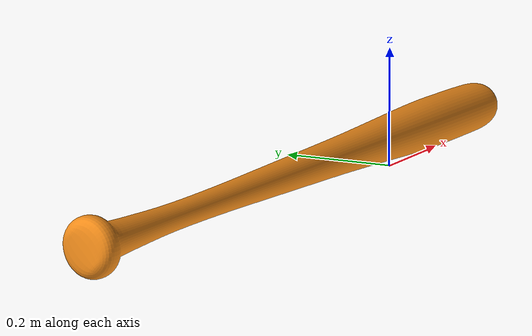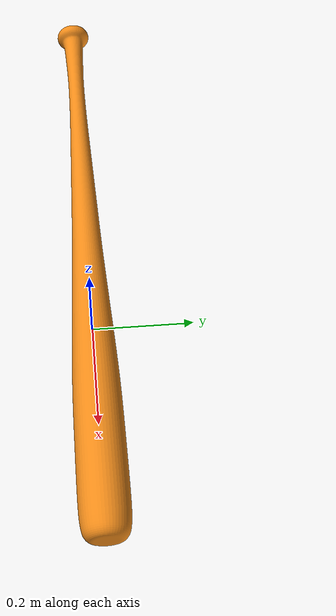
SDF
<?xml version="1.0" ?>
<sdf version="1.6">
  <model name="extra_baseball_bat">
    <static>true</static>
    <link name="link">
      <visual name="visual">
        <geometry>
          <mesh>
            <scale>0.015 0.015 0.015</scale>
            <uri>model://extra_baseball_bat/meshes/baseball_bat.dae</uri>
          </mesh>
  	</geometry>
        <material>
          <script>
            <uri>file://media/materials/scipts/gazebo.material</uri>
            <name>Gazebo/Orange</name>
          </script>
        </material>
      </visual>
    </link>
  </model>
</sdf>
